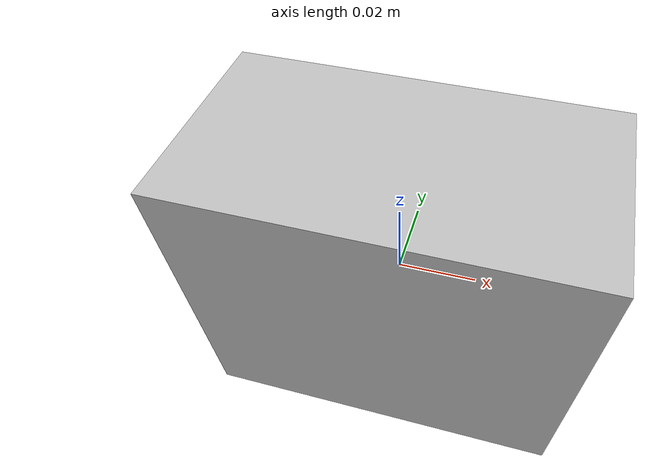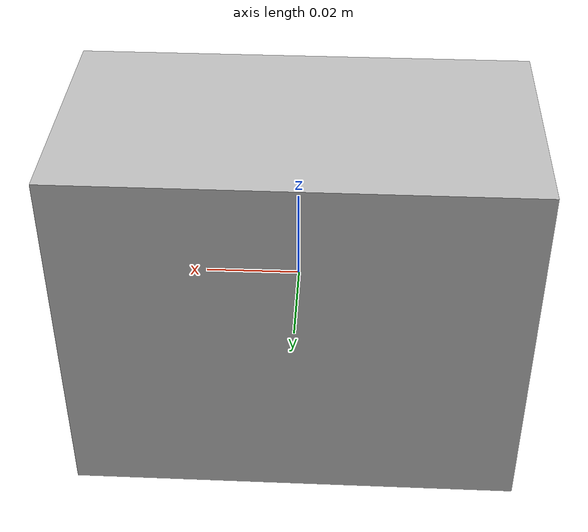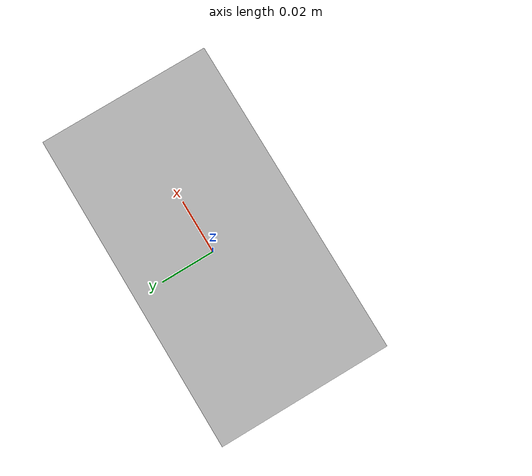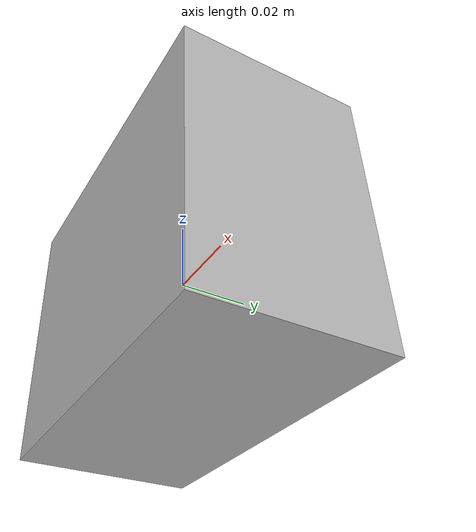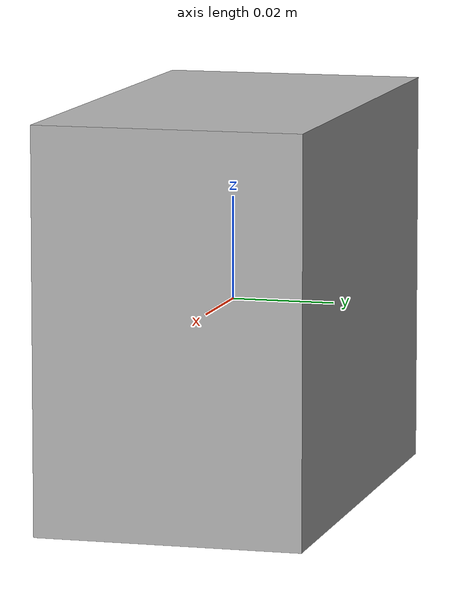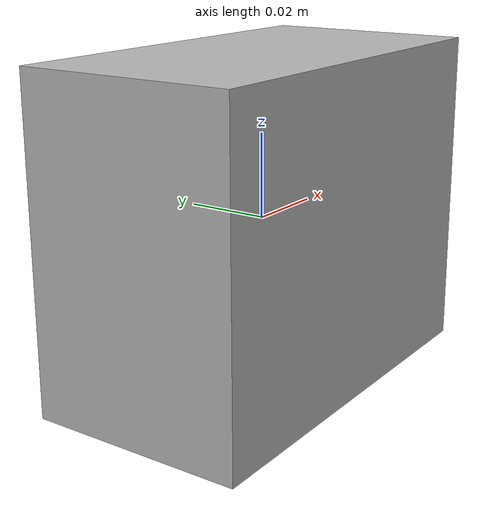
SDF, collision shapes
<?xml version="1.0"?>
<sdf version="1.7">
  <model name="ycb_potted_meat_can">
    <link name="ycb_potted_meat_can_base_link">
      <inertial>
        <mass>0.370000</mass>
        <inertia>
          <ixx>0.000317</ixx>
          <ixy>0</ixy>
          <ixz>0</ixz>
          <iyy>0.000421</iyy>
          <iyz>0</iyz>
          <izz>0.000533</izz>
        </inertia>
      </inertial>
      <visual name="ycb_potted_meat_can_base_link">
        <pose>0.034 0.025 -0.036 0.0 0.0 -0.052</pose>
        <geometry>
          <mesh>
            <uri>package://drake_models/ycb/meshes/010_potted_meat_can_textured.obj</uri>
          </mesh>
        </geometry>
      </visual>
      <collision name="box_collision">
        <geometry>
          <box>
            <size>0.095600 0.051600 0.077500</size>
          </box>
        </geometry>
      </collision>
      <collision name="point_collision1">
        <pose>0.048300 0.026300 0.039250 0 0 0 </pose>
        <geometry>
          <sphere>
            <radius>1e-7</radius>
          </sphere>
        </geometry>
      </collision>
      <collision name="point_collision2">
        <pose>0.048300 0.026300 -0.039250 0 0 0 </pose>
        <geometry>
          <sphere>
            <radius>1e-7</radius>
          </sphere>
        </geometry>
      </collision>
      <collision name="point_collision3">
        <pose>-0.048300 0.026300 0.039250 0 0 0 </pose>
        <geometry>
          <sphere>
            <radius>1e-7</radius>
          </sphere>
        </geometry>
      </collision>
      <collision name="point_collision4">
        <pose>-0.048300 0.026300 -0.039250 0 0 0 </pose>
        <geometry>
          <sphere>
            <radius>1e-7</radius>
          </sphere>
        </geometry>
      </collision>
      <collision name="point_collision5">
        <pose>0.048300 -0.026300 0.039250 0 0 0 </pose>
        <geometry>
          <sphere>
            <radius>1e-7</radius>
          </sphere>
        </geometry>
      </collision>
      <collision name="point_collision6">
        <pose>0.048300 -0.026300 -0.039250 0 0 0 </pose>
        <geometry>
          <sphere>
            <radius>1e-7</radius>
          </sphere>
        </geometry>
      </collision>
      <collision name="point_collision7">
        <pose>-0.048300 -0.026300 0.0392500 0 0 0</pose>
        <geometry>
          <sphere>
            <radius>1e-7</radius>
          </sphere>
        </geometry>
      </collision>
      <collision name="point_collision8">
        <pose>-0.048300 -0.026300 -0.039250 0 0 0 </pose>
        <geometry>
          <sphere>
            <radius>1e-7</radius>
          </sphere>
        </geometry>
      </collision>
    </link>
  </model>
</sdf>
